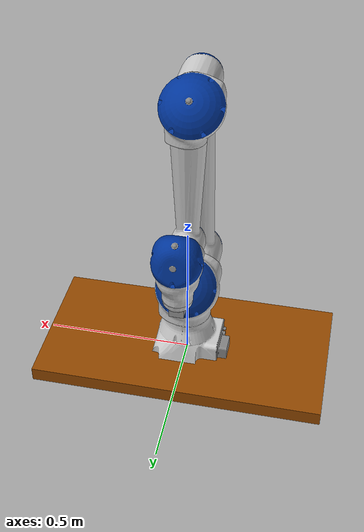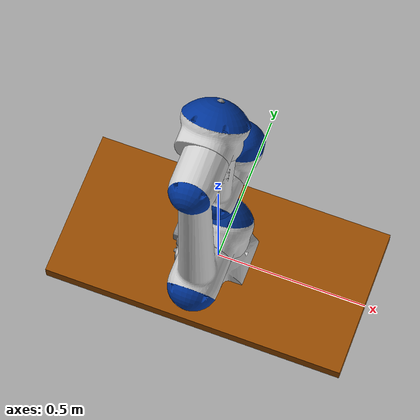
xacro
<?xml version="1.0" ?>
<robot name="motoman_hc10" xmlns:xacro="http://www.ros.org/wiki/xacro">

  <!-- Include the HC10 macros -->
  <xacro:include filename="$(find motoman_hc10_support)/urdf/hc10_macro.xacro" />
  <xacro:motoman_hc10 prefix=""/>

  <!-- Attach HC10 to world -->
  <joint name="base_joint" type="fixed">
    <parent link="world"/>
    <child link="base_link"/>
  </joint>

  <!-- Table (optional, for reference) -->
  <link name="table">
    <visual>
      <geometry>
        <box size="1 0.5 0.05"/>
      </geometry>
      <material name="Brown">
  <color rgba="0.59 0.29 0.0 1.0"/>
</material>
    </visual>
  </link>

  <joint name="table_joint" type="fixed">
    <parent link="world"/>
    <child link="table"/>
    <origin xyz="0 0 0" rpy="0 0 0"/>
  </joint>

  <!-- Attach Kinect Camera to HC10 tool -->
  <link name="camera_depth_frame">
    <visual>
      <geometry>
        <box size="0.05 0.05 0.05"/>
      </geometry>
      <material name="Grey"/>
    </visual>
  </link>

  <joint name="camera_tool_joint" type="fixed">
    <parent link="tool0"/> <!-- HC10 tool flange -->
    <child link="camera_depth_frame"/>
    <origin xyz="0 0 0.01" rpy="0 0 0"/> <!-- adjust as needed -->
  </joint>

  <!-- Gazebo sensor plugin -->
  <gazebo reference="camera_depth_frame">
    <sensor name="kinect_camera" type="depth">
      <update_rate>20</update_rate>
      <camera>
        <horizontal_fov>1.047198</horizontal_fov>
        <image>
          <width>640</width>
          <height>480</height>
          <format>B8G8R8</format>
        </image>
        <clip>
          <near>0.05</near>
          <far>3</far>
        </clip>
      </camera>
      <plugin name="kinect_controller" filename="libgazebo_ros_openni_kinect.so">
        <baseline>0.1</baseline>
        <alwaysOn>true</alwaysOn>
        <updateRate>10</updateRate>
        <cameraName>camera_ir</cameraName>
        <imageTopicName>/camera/color/image_raw</imageTopicName>
        <cameraInfoTopicName>/camera/color/camera_info</cameraInfoTopicName>
        <depthImageTopicName>/camera/depth/image_raw</depthImageTopicName>
        <depthImageCameraInfoTopicName>/camera/depth/camera_info</depthImageCameraInfoTopicName>
        <pointCloudTopicName>/camera/depth/points</pointCloudTopicName>
        <frameName>camera_depth_optical_frame</frameName>
        <distortion_k1>0.0</distortion_k1>
        <distortion_k2>0.0</distortion_k2>
        <distortion_k3>0.0</distortion_k3>
        <distortion_t1>0.0</distortion_t1>
        <distortion_t2>0.0</distortion_t2>
        <pointCloudCutoff>0.16</pointCloudCutoff>
        <pointCloudCutoffMax>10.0</pointCloudCutoffMax>
      </plugin>
    </sensor>
  </gazebo>

</robot>

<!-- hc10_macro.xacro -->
<robot xmlns:xacro="http://ros.org/wiki/xacro">
  <xacro:macro name="motoman_hc10" params="prefix">
    <xacro:include filename="$(find motoman_resources)/urdf/common_materials.xacro"/>

    <!-- link list -->
    <link name="world"/>

    <link name="${prefix}base_link">
      <visual>
        <geometry>
          <mesh filename="package://motoman_hc10_support/meshes/hc10/visual/base_link.dae"/>
        </geometry>
        <xacro:material_yaskawa_blue/>
      </visual>
      <collision>
        <geometry>
          <mesh filename="package://motoman_hc10_support/meshes/hc10/collision/base_link.stl"/>
        </geometry>
      </collision>
      <inertial>
      	 <origin xyz="0 0 0" rpy="0 0 0"/>
      	 <mass value="0.1"/>
      	 <inertia ixx="0.3" ixy="0.03" ixz="0.03" iyy="0.0" iyz="0.0" izz="0.0"/>
      </inertial>
    </link>

    <link name="${prefix}link_1_s">
      <visual>
        <geometry>
          <mesh filename="package://motoman_hc10_support/meshes/hc10/visual/link_1_s.dae"/>
        </geometry>
        <xacro:material_yaskawa_blue/>
      </visual>
      <collision>
        <geometry>
          <mesh filename="package://motoman_hc10_support/meshes/hc10/collision/link_1_s.stl"/>
        </geometry>
      </collision>
      <inertial>
      	 <origin xyz="0 0 0" rpy="0 0 0"/>
      	 <mass value="0.1"/>
      	 <inertia ixx="0.3" ixy="0.03" ixz="0.03" iyy="0.0" iyz="0.0" izz="0.0"/>
      </inertial>
    </link>

    <link name="${prefix}link_2_l">
      <visual>
        <geometry>
          <mesh filename="package://motoman_hc10_support/meshes/hc10/visual/link_2_l.dae"/>
        </geometry>
        <xacro:material_yaskawa_blue/>
      </visual>
      <collision>
        <geometry>
          <mesh filename="package://motoman_hc10_support/meshes/hc10/collision/link_2_l.stl"/>
        </geometry>
      </collision>
      <inertial>
      	 <origin xyz="0 0 0" rpy="0 0 0"/>
      	 <mass value="0.1"/>
      	 <inertia ixx="0.3" ixy="0.03" ixz="0.03" iyy="0.0" iyz="0.0" izz="0.0"/>
      </inertial>
    </link>

    <link name="${prefix}link_3_u">
      <visual>
        <geometry>
          <mesh filename="package://motoman_hc10_support/meshes/hc10/visual/link_3_u.dae"/>
        </geometry>
        <xacro:material_yaskawa_blue/>
      </visual>
      <collision>
        <geometry>
          <mesh filename="package://motoman_hc10_support/meshes/hc10/collision/link_3_u.stl"/>
        </geometry>
      </collision>
      <inertial>
      	 <origin xyz="0 0 0" rpy="0 0 0"/>
      	 <mass value="0.1"/>
      	 <inertia ixx="0.3" ixy="0.03" ixz="0.03" iyy="0.0" iyz="0.0" izz="0.0"/>
      </inertial>
    </link>

    <link name="${prefix}link_4_r">
      <visual>
        <geometry>
          <mesh filename="package://motoman_hc10_support/meshes/hc10/visual/link_4_r.dae"/>
        </geometry>
        <xacro:material_yaskawa_blue/>
      </visual>
      <collision>
        <geometry>
          <mesh filename="package://motoman_hc10_support/meshes/hc10/collision/link_4_r.stl"/>
        </geometry>
      </collision>
      <inertial>
      	 <origin xyz="0 0 0" rpy="0 0 0"/>
      	 <mass value="0.1"/>
      	 <inertia ixx="0.3" ixy="0.03" ixz="0.03" iyy="0.0" iyz="0.0" izz="0.0"/>
      </inertial>
    </link>

    <link name="${prefix}link_5_b">
      <visual>
        <geometry>
          <mesh filename="package://motoman_hc10_support/meshes/hc10/visual/link_5_b.dae"/>
        </geometry>
        <xacro:material_yaskawa_blue/>
      </visual>
      <collision>
        <geometry>
          <mesh filename="package://motoman_hc10_support/meshes/hc10/collision/link_5_b.stl"/>
        </geometry>
      </collision>
      <inertial>
      	 <origin xyz="0 0 0" rpy="0 0 0"/>
      	 <mass value="0.1"/>
      	 <inertia ixx="0.3" ixy="0.03" ixz="0.03" iyy="0.0" iyz="0.0" izz="0.0"/>
      </inertial>
    </link>

    <link name="${prefix}link_6_t">
      <visual>
        <geometry>
          <mesh filename="package://motoman_hc10_support/meshes/hc10/visual/link_6_t.dae"/>
        </geometry>
        <xacro:material_yaskawa_blue/>
      </visual>
      <collision>
        <geometry>
          <mesh filename="package://motoman_hc10_support/meshes/hc10/collision/link_6_t.stl"/>
        </geometry>
      </collision>
      <inertial>
      	 <origin xyz="0 0 0" rpy="0 0 0"/>
      	 <mass value="0.1"/>
      	 <inertia ixx="0.3" ixy="0.03" ixz="0.03" iyy="0.0" iyz="0.0" izz="0.0"/>
      </inertial>
    </link>

    <link name="${prefix}tool0"/>
    <!-- end of link list -->

    <!-- joint list -->

    <joint name="${prefix}joint_1_s" type="revolute">
      <parent link="${prefix}base_link"/>
      <child link="${prefix}link_1_s"/>
      <origin xyz="0 0 0.275" rpy="0 0 0" />
      <axis xyz="0 0 1" />
      <limit lower="${radians(-180)}" upper="${radians(180)}" effort="368.48" velocity="${radians(130)}"/>
      <dynamics damping="1"/>
    </joint>

    <joint name="${prefix}joint_2_l" type="revolute">
      <parent link="${prefix}link_1_s"/>
      <child link="${prefix}link_2_l"/>
      <origin xyz="0 0 0" rpy="0 0 0" />
      <axis xyz="0 1 0" />
      <limit lower="${radians(-180)}" upper="${radians(180)}" effort="368.48" velocity="${radians(130)}"/>
      <dynamics damping="1"/>
    </joint>

    <joint name="${prefix}joint_3_u" type="revolute">
      <parent link="${prefix}link_2_l"/>
      <child link="${prefix}link_3_u"/>
      <origin xyz="0 0 0.700" rpy="0 0 0" />
      <axis xyz="0 -1 0" />
      <limit lower="${radians(-5)}" upper="${radians(355)}" effort="141.12" velocity="${radians(180)}"/>
      <dynamics damping="1"/>
    </joint>

    <joint name="${prefix}joint_4_r" type="revolute">
      <parent link="${prefix}link_3_u"/>
      <child link="${prefix}link_4_r"/>
      <origin xyz="0 0 -0.500" rpy="0 0 0" />
      <axis xyz="0 0 1" />
      <limit lower="${radians(-180)}" upper="${radians(180)}" effort="39.20" velocity="${radians(180)}"/>
      <dynamics damping="1"/>
    </joint>

    <joint name="${prefix}joint_5_b" type="revolute">
      <parent link="${prefix}link_4_r"/>
      <child link="${prefix}link_5_b"/>
      <origin xyz="0 0.162 0" rpy="0 0 0" />
      <axis xyz="0 -1 0" />
      <limit lower="${radians(-180)}" upper="${radians(180)}" effort="31.36" velocity="${radians(250)}"/>
      <dynamics damping="1"/>
    </joint>

    <joint name="${prefix}joint_6_t" type="revolute">
      <parent link="${prefix}link_5_b"/>
      <child link="${prefix}link_6_t"/>
      <origin xyz="0 0 0" rpy="0 0 0" />
      <axis xyz="0 0 1" />
      <limit lower="${radians(-180)}" upper="${radians(180)}" effort="31.36" velocity="${radians(250)}"/>
      <dynamics damping="1"/>
    </joint>

    <joint name="${prefix}joint_6_t-tool0" type="fixed">
      <origin xyz="0 0 -0.130" rpy="${pi} 0 0"/>
      <parent link="${prefix}link_6_t"/>
      <child link="${prefix}tool0"/>
    </joint>
    <!-- end of joint list -->

    <!-- ROS base_link to Robot Manufacturer World Coordinates transform -->
    <link name="${prefix}base" />
    <joint name="${prefix}base_link-base" type="fixed">
      <origin xyz="0 0 0.275" rpy="0 0 0"/>
      <parent link="${prefix}base_link"/>
      <child link="${prefix}base"/>
    </joint>

    <xacro:macro name="control" params="joint">
        <transmission name="${joint}_transmission">
            <type>transmission_interface/SimpleTransmission</type>
            <!-- The EffortJointInterface works best with Gazebo using torques to actuate the joints -->
            <joint name="${joint}">
                <hardwareInterface>hardware_interface/EffortJointInterface</hardwareInterface>
            </joint>
            <actuator name="${joint}_motor">
                <hardwareInterface>hardware_interface/EffortJointInterface</hardwareInterface>
                <mechanicalReduction>1</mechanicalReduction>
            </actuator>
        </transmission>
    </xacro:macro>

    <gazebo>
      <plugin name="gazebo_ros_control" filename="libgazebo_ros_control.so">
        <robotNamespace>/${prefix}</robotNamespace>
        <legacyModeNS>true</legacyModeNS>
      </plugin>
    </gazebo>

	<!-- Transmissions: PositionJointInterface simple -->
	<transmission name="${prefix}trans_joint_1_s">
	  <type>transmission_interface/SimpleTransmission</type>
	  <joint name="${prefix}joint_1_s">
		<hardwareInterface>hardware_interface/EffortJointInterface</hardwareInterface>
	  </joint>
	  <actuator name="${prefix}motor_1_s">
		<hardwareInterface>hardware_interface/EffortJointInterface</hardwareInterface>
		<mechanicalReduction>1</mechanicalReduction>
	  </actuator>
	</transmission>

	<transmission name="${prefix}trans_joint_2_l">
	  <type>transmission_interface/SimpleTransmission</type>
	  <joint name="${prefix}joint_2_l">
		<hardwareInterface>hardware_interface/EffortJointInterface</hardwareInterface>
	  </joint>
	  <actuator name="${prefix}motor_2_l">
		<hardwareInterface>hardware_interface/EffortJointInterface</hardwareInterface>
		<mechanicalReduction>1</mechanicalReduction>
	  </actuator>
	</transmission>

	<transmission name="${prefix}trans_joint_3_u">
	  <type>transmission_interface/SimpleTransmission</type>
	  <joint name="${prefix}joint_3_u">
		<hardwareInterface>hardware_interface/EffortJointInterface</hardwareInterface>
	  </joint>
	  <actuator name="${prefix}motor_3_u">
		<hardwareInterface>hardware_interface/EffortJointInterface</hardwareInterface>
		<mechanicalReduction>1</mechanicalReduction>
	  </actuator>
	</transmission>

	<transmission name="${prefix}trans_joint_4_r">
	  <type>transmission_interface/SimpleTransmission</type>
	  <joint name="${prefix}joint_4_r">
		<hardwareInterface>hardware_interface/EffortJointInterface</hardwareInterface>
	  </joint>
	  <actuator name="${prefix}motor_4_r">
		<hardwareInterface>hardware_interface/EffortJointInterface</hardwareInterface>
		<mechanicalReduction>1</mechanicalReduction>
	  </actuator>
	</transmission>

	<transmission name="${prefix}trans_joint_5_b">
	  <type>transmission_interface/SimpleTransmission</type>
	  <joint name="${prefix}joint_5_b">
		<hardwareInterface>hardware_interface/EffortJointInterface</hardwareInterface>
	  </joint>
	  <actuator name="${prefix}motor_5_b">
		<hardwareInterface>hardware_interface/EffortJointInterface</hardwareInterface>
		<mechanicalReduction>1</mechanicalReduction>
	  </actuator>
	</transmission>

	<transmission name="${prefix}trans_joint_6_t">
	  <type>transmission_interface/SimpleTransmission</type>
	  <joint name="${prefix}joint_6_t">
		<hardwareInterface>hardware_interface/EffortJointInterface</hardwareInterface>
	  </joint>
	  <actuator name="${prefix}motor_6_t">
		<hardwareInterface>hardware_interface/EffortJointInterface</hardwareInterface>
		<mechanicalReduction>1</mechanicalReduction>
	  </actuator>
	</transmission>

  </xacro:macro>
</robot>
